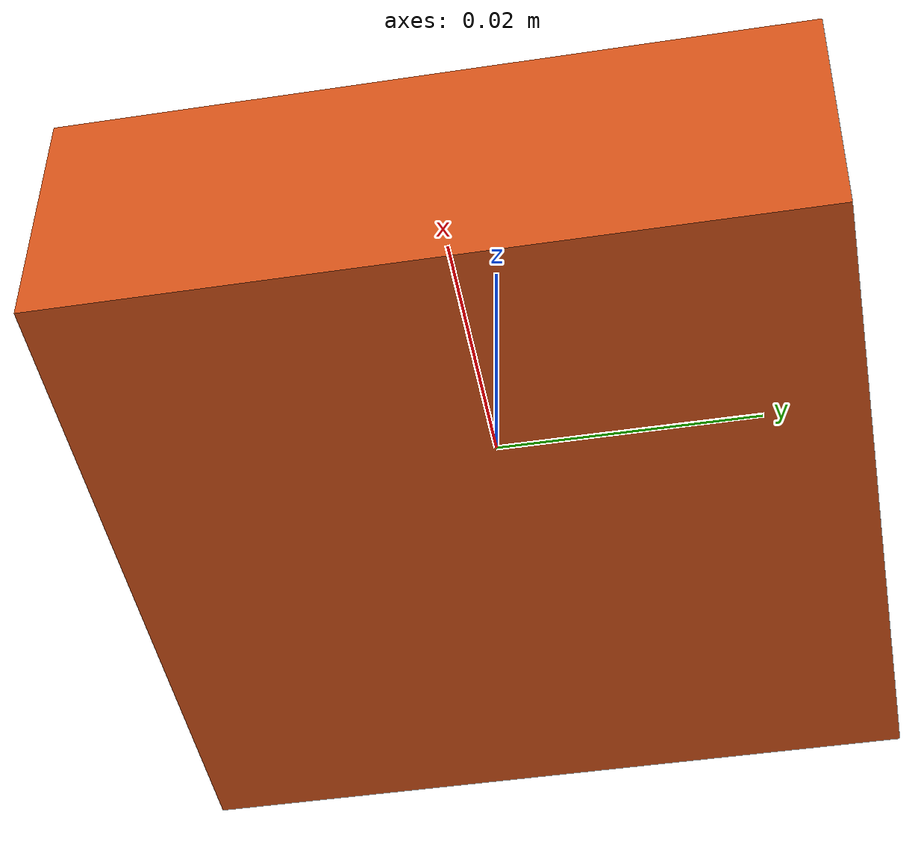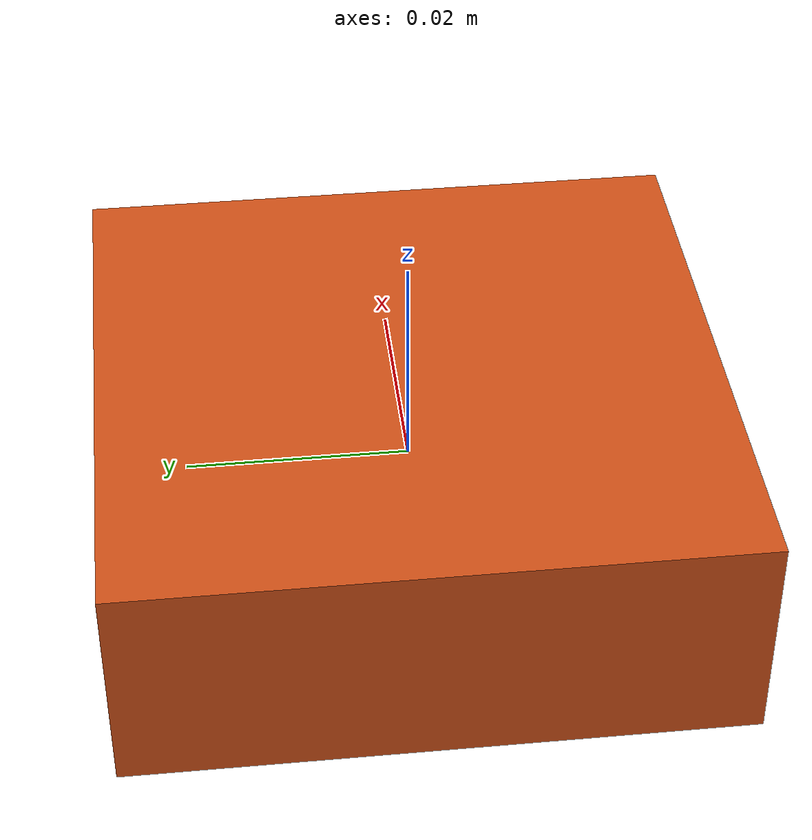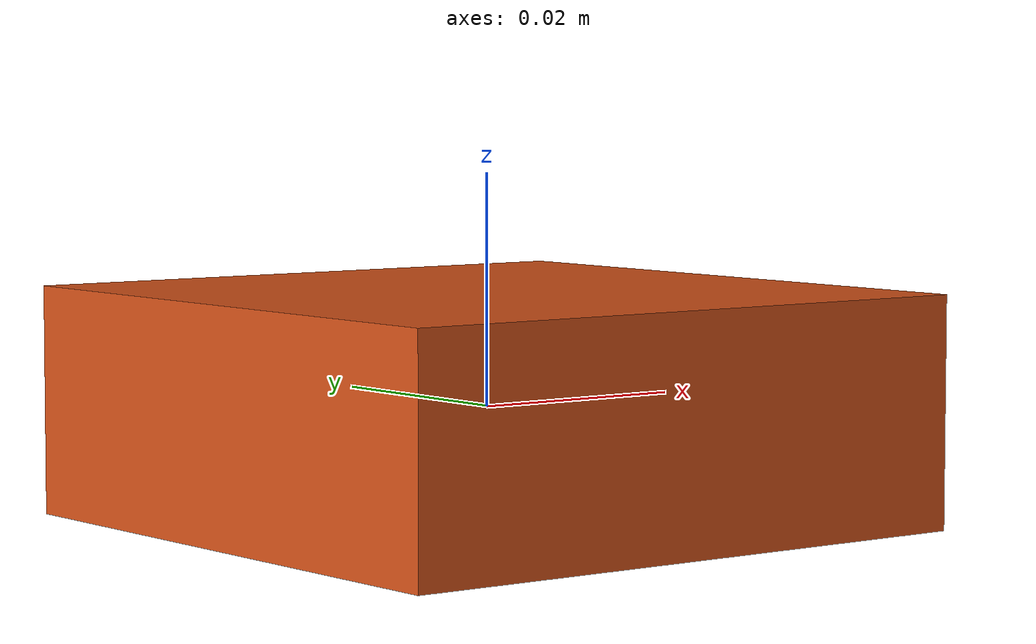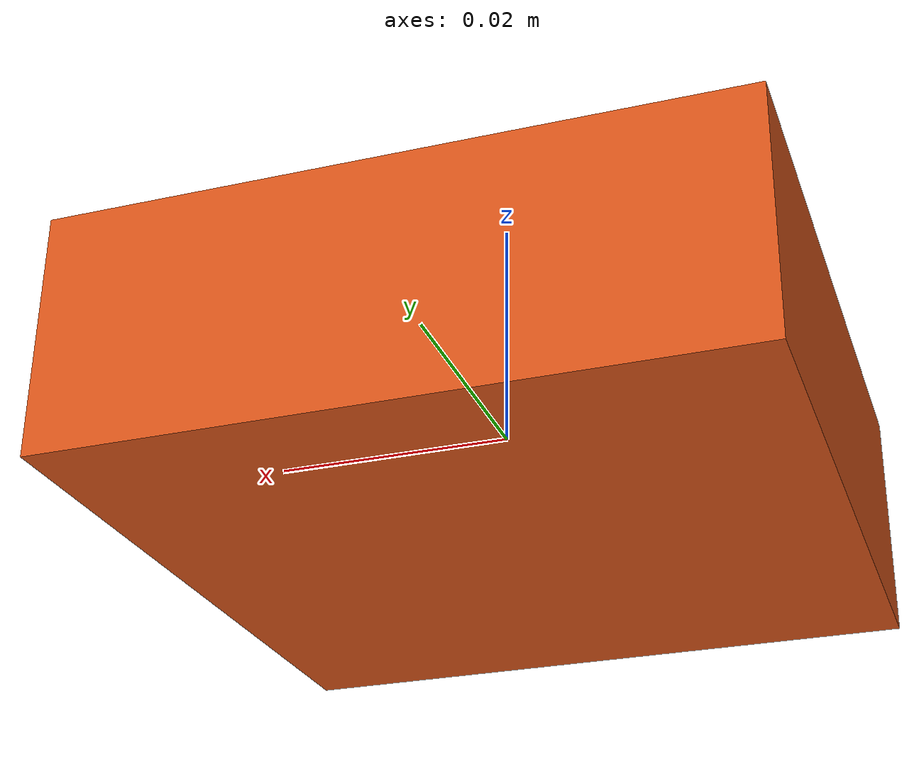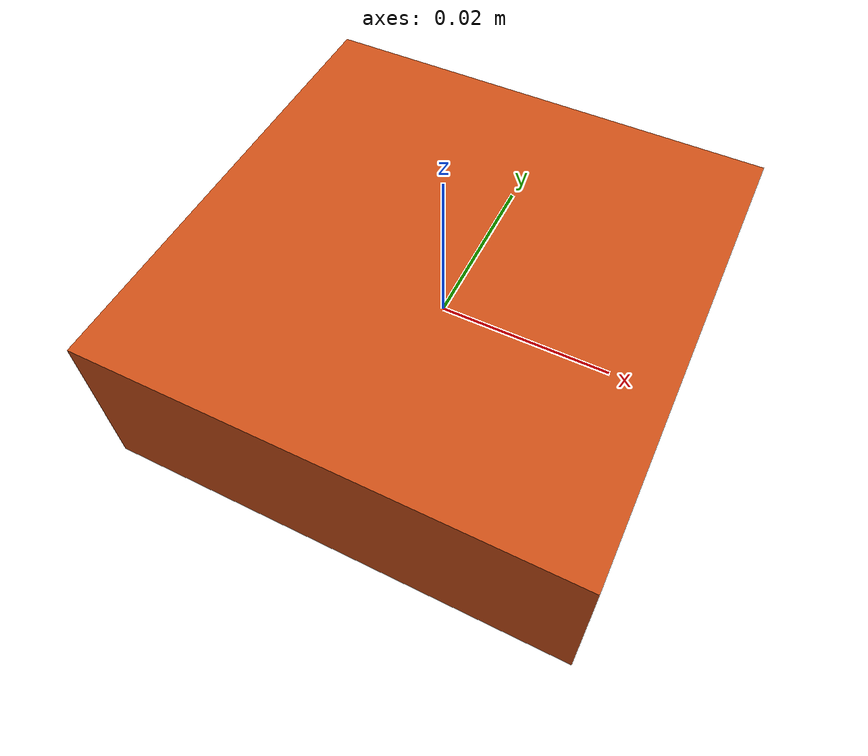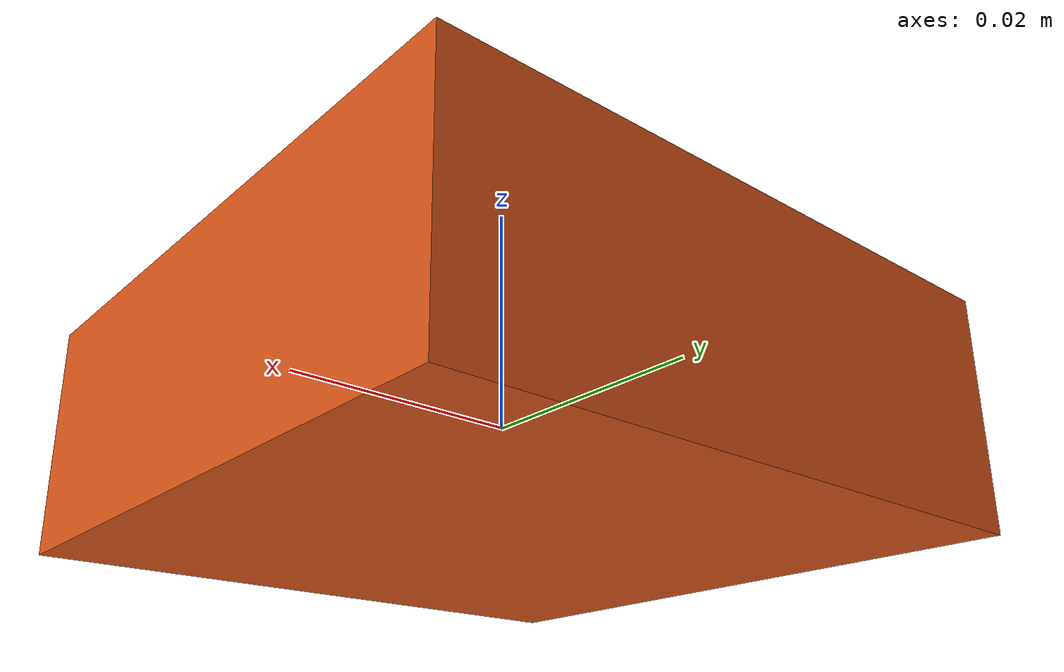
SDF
<sdf version="1.7">
  <model name="puzzle_square_piece">
    <link name="square_link">
      <inertial>
        <mass>0.05</mass>
        <inertia>
          <ixx>1.0e-04</ixx>
          <iyy>1.0e-04</iyy>
          <izz>2.0e-04</izz>
          <ixy>0</ixy>
          <ixz>0</ixz>
          <iyz>0</iyz>
        </inertia>
      </inertial>

      <visual name="square_visual">
        <geometry>
          <box>
            <size>0.055 0.055 0.02</size>
          </box>
        </geometry>
        <material>
          <ambient>0.85 0.33 0.10 1</ambient>
          <diffuse>0.85 0.33 0.10 1</diffuse>
          <specular>0.2 0.2 0.2 1</specular>
        </material>
      </visual>

      <collision name="square_collision">
        <geometry>
          <box>
            <size>0.055 0.055 0.02</size>
          </box>
        </geometry>
      </collision>

    </link>
  </model>
</sdf>
